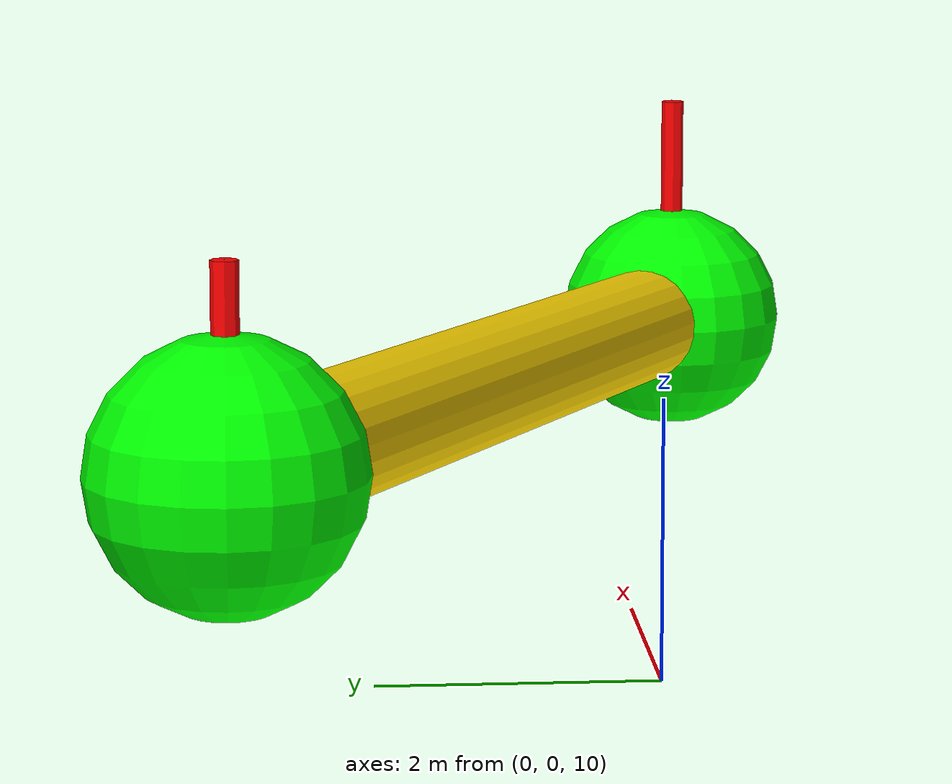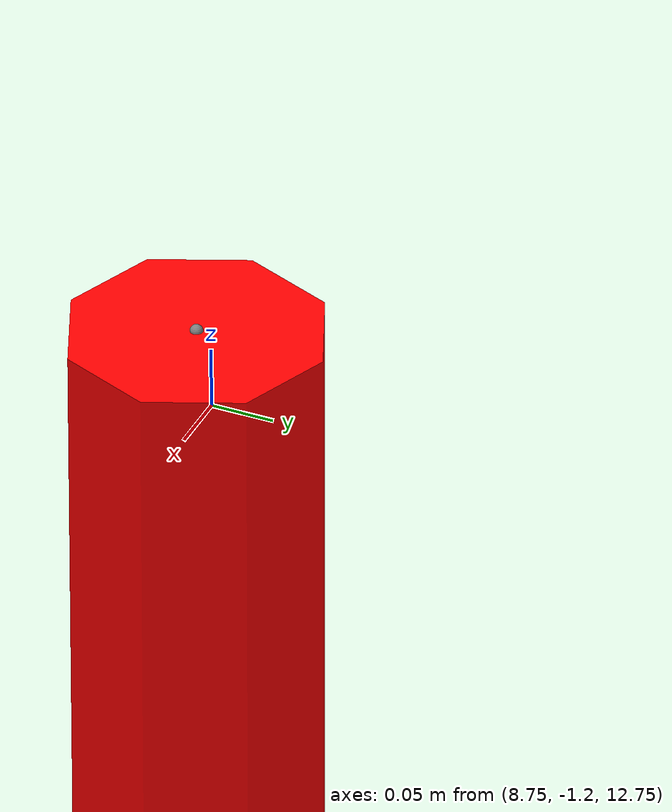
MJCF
<!--
  ~ Copyright (c) 2020.  -  present.  Kun Wang. All Rights Reserved.
  -->

<mujoco model="TT (v1.31)">
    <compiler angle="degree" coordinate="global" inertiafromgeom="true">
             <lengthrange timestep="0.001"/>
    </compiler>

    <option timestep="0.001"
            gravity="0 0 -9.81"
            solver="Newton"
            integrator="Euler"
            iterations="100">
        <flag sensornoise="disable"
            frictionloss="disable"/>
    </option>

    <visual>
        <global offwidth="1280" offheight="720"/>
    </visual>

    <default>
        <geom conaffinity="1" condim="3" contype="1" material="geom" rgba="1 .84 0 1" size="0.014"
              density="1000" friction="1.000 0.00 0.000" solref="-10000 -10"/>
        <site type="sphere" size="0.005"/>
        <tendon width="0.1" rgba="1 0 0 1" damping="10" stiffness="100"/>
        <position ctrllimited="true" ctrlrange="-100 100"/>
    </default>

    <asset>
        <texture builtin="gradient" height="100" rgb1="1 1 1" rgb2="0 0 0" type="skybox"
                 width="100"/>
        <texture builtin="flat" height="1278" mark="cross" markrgb="1 1 1" name="texgeom"
                 random="0.01" rgb1="0.8 0.6 0.4" rgb2="0.8 0.6 0.4" type="cube" width="127"/>
        <texture builtin="checker" height="100" name="texplane" rgb1="0 0 0" rgb2="0.8 0.8 0.8"
                 type="2d" width="100"/>
        <material name="MatPlane" reflectance="0.5" shininess="1" specular="1" texrepeat="30 30"
                  texture="texplane"/>
        <material name="geom" texture="texgeom" texuniform="true"/>
    </asset>

    <worldbody>

        <light cutoff="100" diffuse="1 1 1" dir="-0 0 -1.3" directional="true" exponent="1"
               pos="0 0 1.3" specular=".1 .1 .1"/>
        <geom conaffinity="1" condim="3" material="MatPlane" name="floor" pos="0 0 0"
              rgba="0.8 0.9 0.8 1" size="400 400 10" type="plane" friction="1.0 0 0"/>

        <camera name="camera"  pos="3.466 -24.501 14.058" xyaxes="0.999 -0.041 0.000 0.014 0.335 0.942"/>

        <!-- ======= RODS ======= -->
        <body name="nail0" pos="0 3 13">
            <site name="nail0" pos="0 3 13"/>
        </body>
        <body name="nail1" pos="9 -1.1 13">
            <site name="nail1" pos="9 -1.1 13"/>
        </body>

        <body name="r01">
            <geom name="rod01"
                  fromto="0 3 11.5 9 -1.1 11.0"
                  size="0.5"
                  type="cylinder"
                  solref="-1000000 0"
                  mass="5.0"/>
            <freejoint name="move0_1"/>
            <geom name="sphere0"
                  pos="0 3 11.5"
                  size="1"
                  type="sphere"
                  mass="1.5"
                  rgba="0 1 0 1"
                  solref="-1000000 0"
            />
            <geom name="sphere1"
                  pos="9.0 -1.1 11.0"
                  size="1"
                  type="sphere"
                  mass="1.5"
                  rgba="0 1 0 1"
                  solref="-1000000 0"
            />

            <site name="s0" pos="0 3 11.5" rgba="0 0 0 1" size=".05"/>
            <site name="s1" pos="9.0 -1.1 11.0" rgba="0 0 0 1" size=".05"/>
        </body>
    </worldbody>
    <sensor>
        <framepos name="pos_s0" objname="s0" objtype="site"/>
        <framelinvel name="linvel_s0" objname="s0" objtype="site"/>
        <framelinacc name="linacc_s0" objname="s0" objtype="site"/>
        <framepos name="pos_s1" objname="s1" objtype="site"/>
        <framelinvel name="linvel_s1" objname="s1" objtype="site"/>
        <framelinacc name="linacc_s1" objname="s1" objtype="site"/>
    </sensor>

    <tendon>
        <spatial name="t0" springlength="10.9" damping="15" stiffness="250">
            <site site="nail0"/>
            <site site="s0"/>
        </spatial>
        <spatial name="t1" springlength="10.1" damping="25" stiffness="320">
            <site site="nail1"/>
            <site site="s1"/>
        </spatial>
    </tendon>
    <actuator>
        <general name="f0" gear="0 0 1 0 0 0" joint="move0_1"/>
    </actuator>
</mujoco>
